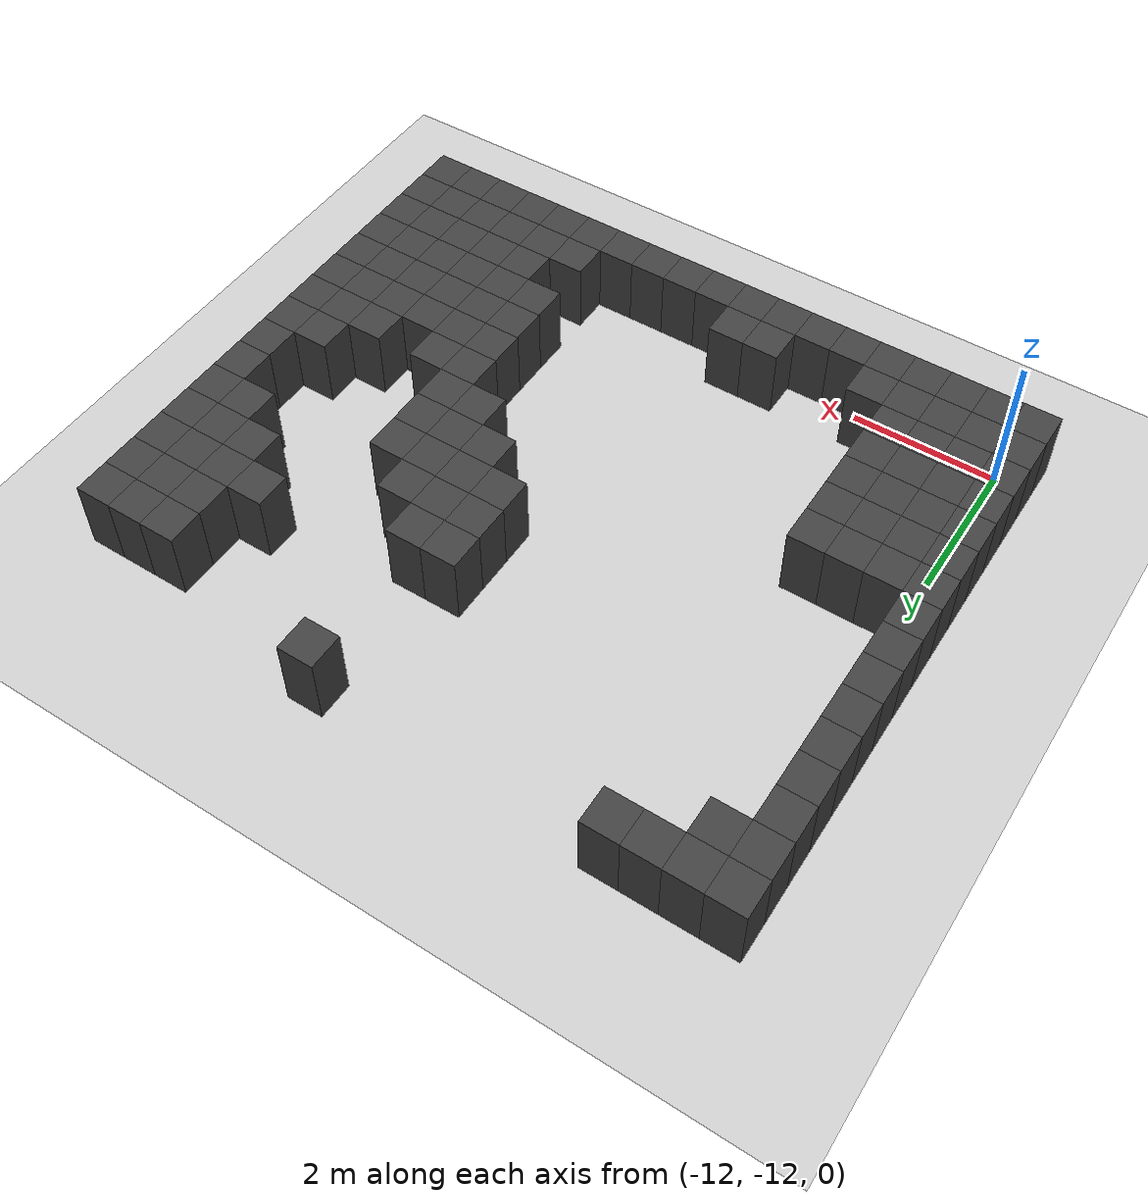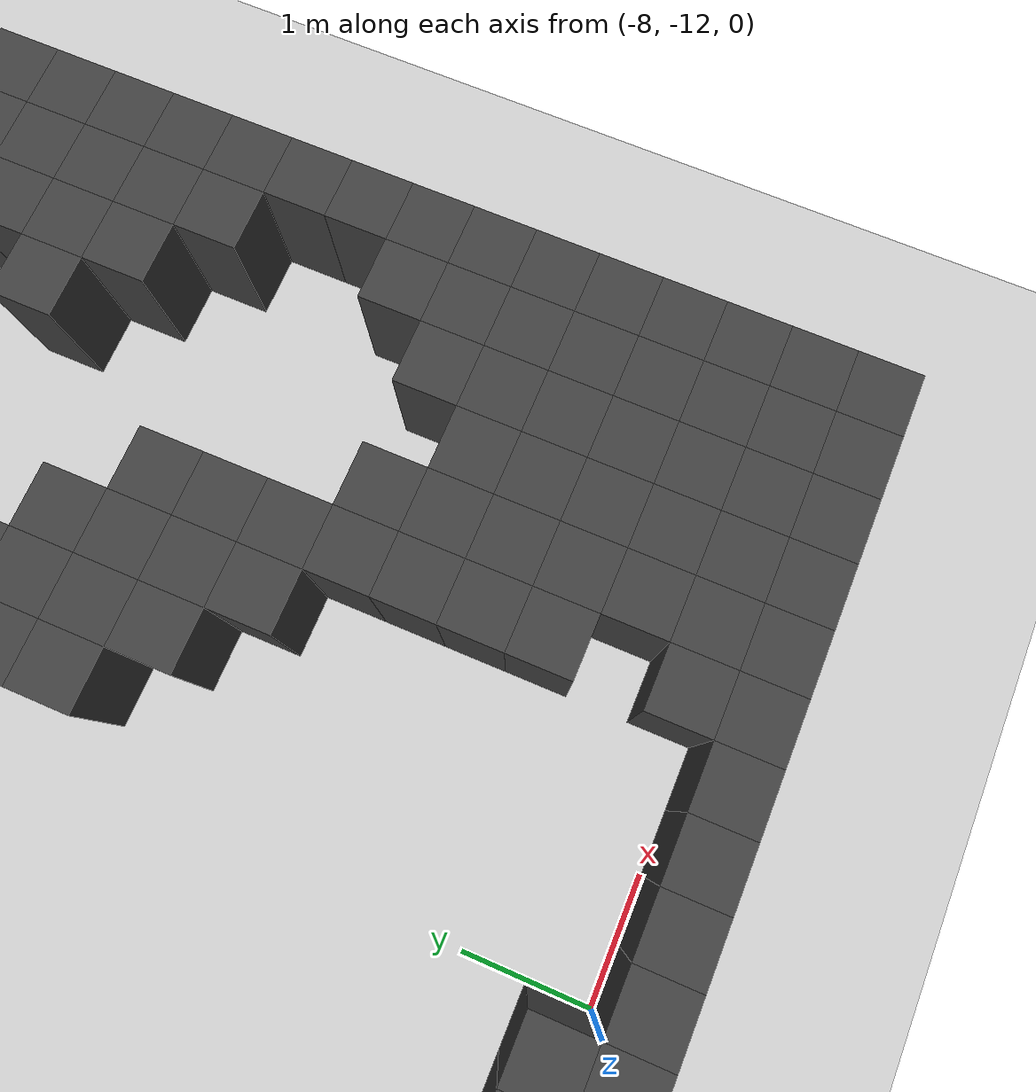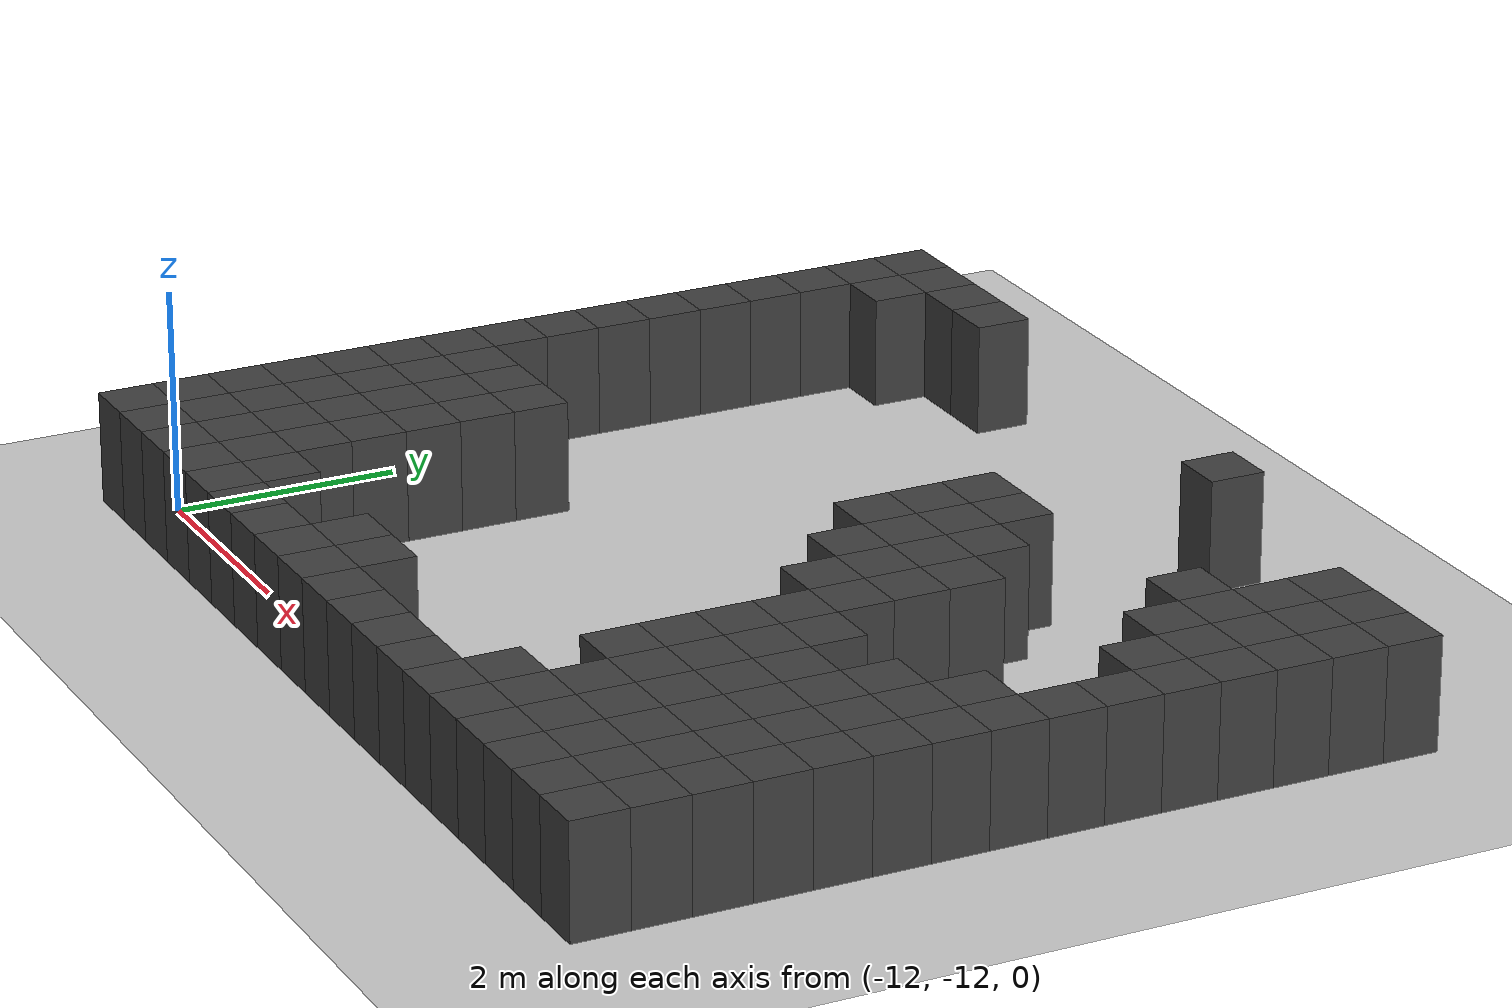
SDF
<sdf version="1.7">
 <world name="map_7981">
  <model name="ground_plane">
   <static>true</static>
   <link name="link">
    <collision name="collision">
     <geometry><plane><normal>0 0 1</normal><size>200 200</size></plane></geometry>
    </collision>
    <visual name="visual">
     <geometry><plane><normal>0 0 1</normal><size>200 200</size></plane></geometry>
     <material><ambient>0.8 0.8 0.8 1</ambient><diffuse>0.8 0.8 0.8 1</diffuse></material>
    </visual>
   </link>
  </model>
  <model name="maze_environment">
   <static>true</static>
   <link name="wall_536">
    <pose>-12.250 -4.750 0.500 0 0 0</pose>
    <collision name="col"><geometry><box><size>0.5 0.5 1.0</size></box></geometry></collision>
    <visual name="vis">
     <geometry><box><size>0.5 0.5 1.0</size></box></geometry>
     <material><ambient>0.15 0.15 0.15 1</ambient><diffuse>0.25 0.25 0.25 1</diffuse></material>
    </visual>
   </link>
   <link name="wall_537">
    <pose>-11.750 -4.750 0.500 0 0 0</pose>
    <collision name="col"><geometry><box><size>0.5 0.5 1.0</size></box></geometry></collision>
    <visual name="vis">
     <geometry><box><size>0.5 0.5 1.0</size></box></geometry>
     <material><ambient>0.15 0.15 0.15 1</ambient><diffuse>0.25 0.25 0.25 1</diffuse></material>
    </visual>
   </link>
   <link name="wall_538">
    <pose>-11.250 -4.750 0.500 0 0 0</pose>
    <collision name="col"><geometry><box><size>0.5 0.5 1.0</size></box></geometry></collision>
    <visual name="vis">
     <geometry><box><size>0.5 0.5 1.0</size></box></geometry>
     <material><ambient>0.15 0.15 0.15 1</ambient><diffuse>0.25 0.25 0.25 1</diffuse></material>
    </visual>
   </link>
   <link name="wall_539">
    <pose>-10.750 -4.750 0.500 0 0 0</pose>
    <collision name="col"><geometry><box><size>0.5 0.5 1.0</size></box></geometry></collision>
    <visual name="vis">
     <geometry><box><size>0.5 0.5 1.0</size></box></geometry>
     <material><ambient>0.15 0.15 0.15 1</ambient><diffuse>0.25 0.25 0.25 1</diffuse></material>
    </visual>
   </link>
   <link name="wall_540">
    <pose>-6.750 -4.750 0.500 0 0 0</pose>
    <collision name="col"><geometry><box><size>0.5 0.5 1.0</size></box></geometry></collision>
    <visual name="vis">
     <geometry><box><size>0.5 0.5 1.0</size></box></geometry>
     <material><ambient>0.15 0.15 0.15 1</ambient><diffuse>0.25 0.25 0.25 1</diffuse></material>
    </visual>
   </link>
   <link name="wall_549">
    <pose>-12.250 -5.250 0.500 0 0 0</pose>
    <collision name="col"><geometry><box><size>0.5 0.5 1.0</size></box></geometry></collision>
    <visual name="vis">
     <geometry><box><size>0.5 0.5 1.0</size></box></geometry>
     <material><ambient>0.15 0.15 0.15 1</ambient><diffuse>0.25 0.25 0.25 1</diffuse></material>
    </visual>
   </link>
   <link name="wall_550">
    <pose>-11.750 -5.250 0.500 0 0 0</pose>
    <collision name="col"><geometry><box><size>0.5 0.5 1.0</size></box></geometry></collision>
    <visual name="vis">
     <geometry><box><size>0.5 0.5 1.0</size></box></geometry>
     <material><ambient>0.15 0.15 0.15 1</ambient><diffuse>0.25 0.25 0.25 1</diffuse></material>
    </visual>
   </link>
   <link name="wall_551">
    <pose>-4.250 -5.250 0.500 0 0 0</pose>
    <collision name="col"><geometry><box><size>0.5 0.5 1.0</size></box></geometry></collision>
    <visual name="vis">
     <geometry><box><size>0.5 0.5 1.0</size></box></geometry>
     <material><ambient>0.15 0.15 0.15 1</ambient><diffuse>0.25 0.25 0.25 1</diffuse></material>
    </visual>
   </link>
   <link name="wall_552">
    <pose>-3.750 -5.250 0.500 0 0 0</pose>
    <collision name="col"><geometry><box><size>0.5 0.5 1.0</size></box></geometry></collision>
    <visual name="vis">
     <geometry><box><size>0.5 0.5 1.0</size></box></geometry>
     <material><ambient>0.15 0.15 0.15 1</ambient><diffuse>0.25 0.25 0.25 1</diffuse></material>
    </visual>
   </link>
   <link name="wall_553">
    <pose>-3.250 -5.250 0.500 0 0 0</pose>
    <collision name="col"><geometry><box><size>0.5 0.5 1.0</size></box></geometry></collision>
    <visual name="vis">
     <geometry><box><size>0.5 0.5 1.0</size></box></geometry>
     <material><ambient>0.15 0.15 0.15 1</ambient><diffuse>0.25 0.25 0.25 1</diffuse></material>
    </visual>
   </link>
   <link name="wall_563">
    <pose>-12.250 -5.750 0.500 0 0 0</pose>
    <collision name="col"><geometry><box><size>0.5 0.5 1.0</size></box></geometry></collision>
    <visual name="vis">
     <geometry><box><size>0.5 0.5 1.0</size></box></geometry>
     <material><ambient>0.15 0.15 0.15 1</ambient><diffuse>0.25 0.25 0.25 1</diffuse></material>
    </visual>
   </link>
   <link name="wall_564">
    <pose>-4.250 -5.750 0.500 0 0 0</pose>
    <collision name="col"><geometry><box><size>0.5 0.5 1.0</size></box></geometry></collision>
    <visual name="vis">
     <geometry><box><size>0.5 0.5 1.0</size></box></geometry>
     <material><ambient>0.15 0.15 0.15 1</ambient><diffuse>0.25 0.25 0.25 1</diffuse></material>
    </visual>
   </link>
   <link name="wall_565">
    <pose>-3.750 -5.750 0.500 0 0 0</pose>
    <collision name="col"><geometry><box><size>0.5 0.5 1.0</size></box></geometry></collision>
    <visual name="vis">
     <geometry><box><size>0.5 0.5 1.0</size></box></geometry>
     <material><ambient>0.15 0.15 0.15 1</ambient><diffuse>0.25 0.25 0.25 1</diffuse></material>
    </visual>
   </link>
   <link name="wall_566">
    <pose>-3.250 -5.750 0.500 0 0 0</pose>
    <collision name="col"><geometry><box><size>0.5 0.5 1.0</size></box></geometry></collision>
    <visual name="vis">
     <geometry><box><size>0.5 0.5 1.0</size></box></geometry>
     <material><ambient>0.15 0.15 0.15 1</ambient><diffuse>0.25 0.25 0.25 1</diffuse></material>
    </visual>
   </link>
   <link name="wall_579">
    <pose>-12.250 -6.250 0.500 0 0 0</pose>
    <collision name="col"><geometry><box><size>0.5 0.5 1.0</size></box></geometry></collision>
    <visual name="vis">
     <geometry><box><size>0.5 0.5 1.0</size></box></geometry>
     <material><ambient>0.15 0.15 0.15 1</ambient><diffuse>0.25 0.25 0.25 1</diffuse></material>
    </visual>
   </link>
   <link name="wall_580">
    <pose>-4.750 -6.250 0.500 0 0 0</pose>
    <collision name="col"><geometry><box><size>0.5 0.5 1.0</size></box></geometry></collision>
    <visual name="vis">
     <geometry><box><size>0.5 0.5 1.0</size></box></geometry>
     <material><ambient>0.15 0.15 0.15 1</ambient><diffuse>0.25 0.25 0.25 1</diffuse></material>
    </visual>
   </link>
   <link name="wall_581">
    <pose>-4.250 -6.250 0.500 0 0 0</pose>
    <collision name="col"><geometry><box><size>0.5 0.5 1.0</size></box></geometry></collision>
    <visual name="vis">
     <geometry><box><size>0.5 0.5 1.0</size></box></geometry>
     <material><ambient>0.15 0.15 0.15 1</ambient><diffuse>0.25 0.25 0.25 1</diffuse></material>
    </visual>
   </link>
   <link name="wall_582">
    <pose>-3.750 -6.250 0.500 0 0 0</pose>
    <collision name="col"><geometry><box><size>0.5 0.5 1.0</size></box></geometry></collision>
    <visual name="vis">
     <geometry><box><size>0.5 0.5 1.0</size></box></geometry>
     <material><ambient>0.15 0.15 0.15 1</ambient><diffuse>0.25 0.25 0.25 1</diffuse></material>
    </visual>
   </link>
   <link name="wall_583">
    <pose>-3.250 -6.250 0.500 0 0 0</pose>
    <collision name="col"><geometry><box><size>0.5 0.5 1.0</size></box></geometry></collision>
    <visual name="vis">
     <geometry><box><size>0.5 0.5 1.0</size></box></geometry>
     <material><ambient>0.15 0.15 0.15 1</ambient><diffuse>0.25 0.25 0.25 1</diffuse></material>
    </visual>
   </link>
   <link name="wall_600">
    <pose>-12.250 -6.750 0.500 0 0 0</pose>
    <collision name="col"><geometry><box><size>0.5 0.5 1.0</size></box></geometry></collision>
    <visual name="vis">
     <geometry><box><size>0.5 0.5 1.0</size></box></geometry>
     <material><ambient>0.15 0.15 0.15 1</ambient><diffuse>0.25 0.25 0.25 1</diffuse></material>
    </visual>
   </link>
   <link name="wall_601">
    <pose>-7.250 -6.750 0.500 0 0 0</pose>
    <collision name="col"><geometry><box><size>0.5 0.5 1.0</size></box></geometry></collision>
    <visual name="vis">
     <geometry><box><size>0.5 0.5 1.0</size></box></geometry>
     <material><ambient>0.15 0.15 0.15 1</ambient><diffuse>0.25 0.25 0.25 1</diffuse></material>
    </visual>
   </link>
   <link name="wall_602">
    <pose>-6.750 -6.750 0.500 0 0 0</pose>
    <collision name="col"><geometry><box><size>0.5 0.5 1.0</size></box></geometry></collision>
    <visual name="vis">
     <geometry><box><size>0.5 0.5 1.0</size></box></geometry>
     <material><ambient>0.15 0.15 0.15 1</ambient><diffuse>0.25 0.25 0.25 1</diffuse></material>
    </visual>
   </link>
   <link name="wall_603">
    <pose>-4.250 -6.750 0.500 0 0 0</pose>
    <collision name="col"><geometry><box><size>0.5 0.5 1.0</size></box></geometry></collision>
    <visual name="vis">
     <geometry><box><size>0.5 0.5 1.0</size></box></geometry>
     <material><ambient>0.15 0.15 0.15 1</ambient><diffuse>0.25 0.25 0.25 1</diffuse></material>
    </visual>
   </link>
   <link name="wall_604">
    <pose>-3.750 -6.750 0.500 0 0 0</pose>
    <collision name="col"><geometry><box><size>0.5 0.5 1.0</size></box></geometry></collision>
    <visual name="vis">
     <geometry><box><size>0.5 0.5 1.0</size></box></geometry>
     <material><ambient>0.15 0.15 0.15 1</ambient><diffuse>0.25 0.25 0.25 1</diffuse></material>
    </visual>
   </link>
   <link name="wall_605">
    <pose>-3.250 -6.750 0.500 0 0 0</pose>
    <collision name="col"><geometry><box><size>0.5 0.5 1.0</size></box></geometry></collision>
    <visual name="vis">
     <geometry><box><size>0.5 0.5 1.0</size></box></geometry>
     <material><ambient>0.15 0.15 0.15 1</ambient><diffuse>0.25 0.25 0.25 1</diffuse></material>
    </visual>
   </link>
   <link name="wall_629">
    <pose>-12.250 -7.250 0.500 0 0 0</pose>
    <collision name="col"><geometry><box><size>0.5 0.5 1.0</size></box></geometry></collision>
    <visual name="vis">
     <geometry><box><size>0.5 0.5 1.0</size></box></geometry>
     <material><ambient>0.15 0.15 0.15 1</ambient><diffuse>0.25 0.25 0.25 1</diffuse></material>
    </visual>
   </link>
   <link name="wall_630">
    <pose>-7.250 -7.250 0.500 0 0 0</pose>
    <collision name="col"><geometry><box><size>0.5 0.5 1.0</size></box></geometry></collision>
    <visual name="vis">
     <geometry><box><size>0.5 0.5 1.0</size></box></geometry>
     <material><ambient>0.15 0.15 0.15 1</ambient><diffuse>0.25 0.25 0.25 1</diffuse></material>
    </visual>
   </link>
   <link name="wall_631">
    <pose>-6.750 -7.250 0.500 0 0 0</pose>
    <collision name="col"><geometry><box><size>0.5 0.5 1.0</size></box></geometry></collision>
    <visual name="vis">
     <geometry><box><size>0.5 0.5 1.0</size></box></geometry>
     <material><ambient>0.15 0.15 0.15 1</ambient><diffuse>0.25 0.25 0.25 1</diffuse></material>
    </visual>
   </link>
   <link name="wall_632">
    <pose>-6.250 -7.250 0.500 0 0 0</pose>
    <collision name="col"><geometry><box><size>0.5 0.5 1.0</size></box></geometry></collision>
    <visual name="vis">
     <geometry><box><size>0.5 0.5 1.0</size></box></geometry>
     <material><ambient>0.15 0.15 0.15 1</ambient><diffuse>0.25 0.25 0.25 1</diffuse></material>
    </visual>
   </link>
   <link name="wall_633">
    <pose>-3.750 -7.250 0.500 0 0 0</pose>
    <collision name="col"><geometry><box><size>0.5 0.5 1.0</size></box></geometry></collision>
    <visual name="vis">
     <geometry><box><size>0.5 0.5 1.0</size></box></geometry>
     <material><ambient>0.15 0.15 0.15 1</ambient><diffuse>0.25 0.25 0.25 1</diffuse></material>
    </visual>
   </link>
   <link name="wall_634">
    <pose>-3.250 -7.250 0.500 0 0 0</pose>
    <collision name="col"><geometry><box><size>0.5 0.5 1.0</size></box></geometry></collision>
    <visual name="vis">
     <geometry><box><size>0.5 0.5 1.0</size></box></geometry>
     <material><ambient>0.15 0.15 0.15 1</ambient><diffuse>0.25 0.25 0.25 1</diffuse></material>
    </visual>
   </link>
   <link name="wall_660">
    <pose>-12.250 -7.750 0.500 0 0 0</pose>
    <collision name="col"><geometry><box><size>0.5 0.5 1.0</size></box></geometry></collision>
    <visual name="vis">
     <geometry><box><size>0.5 0.5 1.0</size></box></geometry>
     <material><ambient>0.15 0.15 0.15 1</ambient><diffuse>0.25 0.25 0.25 1</diffuse></material>
    </visual>
   </link>
   <link name="wall_661">
    <pose>-7.250 -7.750 0.500 0 0 0</pose>
    <collision name="col"><geometry><box><size>0.5 0.5 1.0</size></box></geometry></collision>
    <visual name="vis">
     <geometry><box><size>0.5 0.5 1.0</size></box></geometry>
     <material><ambient>0.15 0.15 0.15 1</ambient><diffuse>0.25 0.25 0.25 1</diffuse></material>
    </visual>
   </link>
   <link name="wall_662">
    <pose>-6.750 -7.750 0.500 0 0 0</pose>
    <collision name="col"><geometry><box><size>0.5 0.5 1.0</size></box></geometry></collision>
    <visual name="vis">
     <geometry><box><size>0.5 0.5 1.0</size></box></geometry>
     <material><ambient>0.15 0.15 0.15 1</ambient><diffuse>0.25 0.25 0.25 1</diffuse></material>
    </visual>
   </link>
   <link name="wall_663">
    <pose>-6.250 -7.750 0.500 0 0 0</pose>
    <collision name="col"><geometry><box><size>0.5 0.5 1.0</size></box></geometry></collision>
    <visual name="vis">
     <geometry><box><size>0.5 0.5 1.0</size></box></geometry>
     <material><ambient>0.15 0.15 0.15 1</ambient><diffuse>0.25 0.25 0.25 1</diffuse></material>
    </visual>
   </link>
   <link name="wall_664">
    <pose>-5.750 -7.750 0.500 0 0 0</pose>
    <collision name="col"><geometry><box><size>0.5 0.5 1.0</size></box></geometry></collision>
    <visual name="vis">
     <geometry><box><size>0.5 0.5 1.0</size></box></geometry>
     <material><ambient>0.15 0.15 0.15 1</ambient><diffuse>0.25 0.25 0.25 1</diffuse></material>
    </visual>
   </link>
   <link name="wall_665">
    <pose>-3.250 -7.750 0.500 0 0 0</pose>
    <collision name="col"><geometry><box><size>0.5 0.5 1.0</size></box></geometry></collision>
    <visual name="vis">
     <geometry><box><size>0.5 0.5 1.0</size></box></geometry>
     <material><ambient>0.15 0.15 0.15 1</ambient><diffuse>0.25 0.25 0.25 1</diffuse></material>
    </visual>
   </link>
   <link name="wall_691">
    <pose>-12.250 -8.250 0.500 0 0 0</pose>
    <collision name="col"><geometry><box><size>0.5 0.5 1.0</size></box></geometry></collision>
    <visual name="vis">
     <geometry><box><size>0.5 0.5 1.0</size></box></geometry>
     <material><ambient>0.15 0.15 0.15 1</ambient><diffuse>0.25 0.25 0.25 1</diffuse></material>
    </visual>
   </link>
   <link name="wall_692">
    <pose>-6.750 -8.250 0.500 0 0 0</pose>
    <collision name="col"><geometry><box><size>0.5 0.5 1.0</size></box></geometry></collision>
    <visual name="vis">
     <geometry><box><size>0.5 0.5 1.0</size></box></geometry>
     <material><ambient>0.15 0.15 0.15 1</ambient><diffuse>0.25 0.25 0.25 1</diffuse></material>
    </visual>
   </link>
   <link name="wall_693">
    <pose>-6.250 -8.250 0.500 0 0 0</pose>
    <collision name="col"><geometry><box><size>0.5 0.5 1.0</size></box></geometry></collision>
    <visual name="vis">
     <geometry><box><size>0.5 0.5 1.0</size></box></geometry>
     <material><ambient>0.15 0.15 0.15 1</ambient><diffuse>0.25 0.25 0.25 1</diffuse></material>
    </visual>
   </link>
   <link name="wall_694">
    <pose>-5.750 -8.250 0.500 0 0 0</pose>
    <collision name="col"><geometry><box><size>0.5 0.5 1.0</size></box></geometry></collision>
    <visual name="vis">
     <geometry><box><size>0.5 0.5 1.0</size></box></geometry>
     <material><ambient>0.15 0.15 0.15 1</ambient><diffuse>0.25 0.25 0.25 1</diffuse></material>
    </visual>
   </link>
   <link name="wall_695">
    <pose>-3.250 -8.250 0.500 0 0 0</pose>
    <collision name="col"><geometry><box><size>0.5 0.5 1.0</size></box></geometry></collision>
    <visual name="vis">
     <geometry><box><size>0.5 0.5 1.0</size></box></geometry>
     <material><ambient>0.15 0.15 0.15 1</ambient><diffuse>0.25 0.25 0.25 1</diffuse></material>
    </visual>
   </link>
   <link name="wall_718">
    <pose>-12.250 -8.750 0.500 0 0 0</pose>
    <collision name="col"><geometry><box><size>0.5 0.5 1.0</size></box></geometry></collision>
    <visual name="vis">
     <geometry><box><size>0.5 0.5 1.0</size></box></geometry>
     <material><ambient>0.15 0.15 0.15 1</ambient><diffuse>0.25 0.25 0.25 1</diffuse></material>
    </visual>
   </link>
   <link name="wall_719">
    <pose>-6.250 -8.750 0.500 0 0 0</pose>
    <collision name="col"><geometry><box><size>0.5 0.5 1.0</size></box></geometry></collision>
    <visual name="vis">
     <geometry><box><size>0.5 0.5 1.0</size></box></geometry>
     <material><ambient>0.15 0.15 0.15 1</ambient><diffuse>0.25 0.25 0.25 1</diffuse></material>
    </visual>
   </link>
   <link name="wall_720">
    <pose>-5.750 -8.750 0.500 0 0 0</pose>
    <collision name="col"><geometry><box><size>0.5 0.5 1.0</size></box></geometry></collision>
    <visual name="vis">
     <geometry><box><size>0.5 0.5 1.0</size></box></geometry>
     <material><ambient>0.15 0.15 0.15 1</ambient><diffuse>0.25 0.25 0.25 1</diffuse></material>
    </visual>
   </link>
   <link name="wall_721">
    <pose>-3.750 -8.750 0.500 0 0 0</pose>
    <collision name="col"><geometry><box><size>0.5 0.5 1.0</size></box></geometry></collision>
    <visual name="vis">
     <geometry><box><size>0.5 0.5 1.0</size></box></geometry>
     <material><ambient>0.15 0.15 0.15 1</ambient><diffuse>0.25 0.25 0.25 1</diffuse></material>
    </visual>
   </link>
   <link name="wall_722">
    <pose>-3.250 -8.750 0.500 0 0 0</pose>
    <collision name="col"><geometry><box><size>0.5 0.5 1.0</size></box></geometry></collision>
    <visual name="vis">
     <geometry><box><size>0.5 0.5 1.0</size></box></geometry>
     <material><ambient>0.15 0.15 0.15 1</ambient><diffuse>0.25 0.25 0.25 1</diffuse></material>
    </visual>
   </link>
   <link name="wall_738">
    <pose>-12.250 -9.250 0.500 0 0 0</pose>
    <collision name="col"><geometry><box><size>0.5 0.5 1.0</size></box></geometry></collision>
    <visual name="vis">
     <geometry><box><size>0.5 0.5 1.0</size></box></geometry>
     <material><ambient>0.15 0.15 0.15 1</ambient><diffuse>0.25 0.25 0.25 1</diffuse></material>
    </visual>
   </link>
   <link name="wall_739">
    <pose>-11.750 -9.250 0.500 0 0 0</pose>
    <collision name="col"><geometry><box><size>0.5 0.5 1.0</size></box></geometry></collision>
    <visual name="vis">
     <geometry><box><size>0.5 0.5 1.0</size></box></geometry>
     <material><ambient>0.15 0.15 0.15 1</ambient><diffuse>0.25 0.25 0.25 1</diffuse></material>
    </visual>
   </link>
   <link name="wall_740">
    <pose>-11.250 -9.250 0.500 0 0 0</pose>
    <collision name="col"><geometry><box><size>0.5 0.5 1.0</size></box></geometry></collision>
    <visual name="vis">
     <geometry><box><size>0.5 0.5 1.0</size></box></geometry>
     <material><ambient>0.15 0.15 0.15 1</ambient><diffuse>0.25 0.25 0.25 1</diffuse></material>
    </visual>
   </link>
   <link name="wall_741">
    <pose>-10.750 -9.250 0.500 0 0 0</pose>
    <collision name="col"><geometry><box><size>0.5 0.5 1.0</size></box></geometry></collision>
    <visual name="vis">
     <geometry><box><size>0.5 0.5 1.0</size></box></geometry>
     <material><ambient>0.15 0.15 0.15 1</ambient><diffuse>0.25 0.25 0.25 1</diffuse></material>
    </visual>
   </link>
   <link name="wall_742">
    <pose>-5.750 -9.250 0.500 0 0 0</pose>
    <collision name="col"><geometry><box><size>0.5 0.5 1.0</size></box></geometry></collision>
    <visual name="vis">
     <geometry><box><size>0.5 0.5 1.0</size></box></geometry>
     <material><ambient>0.15 0.15 0.15 1</ambient><diffuse>0.25 0.25 0.25 1</diffuse></material>
    </visual>
   </link>
   <link name="wall_743">
    <pose>-5.250 -9.250 0.500 0 0 0</pose>
    <collision name="col"><geometry><box><size>0.5 0.5 1.0</size></box></geometry></collision>
    <visual name="vis">
     <geometry><box><size>0.5 0.5 1.0</size></box></geometry>
     <material><ambient>0.15 0.15 0.15 1</ambient><diffuse>0.25 0.25 0.25 1</diffuse></material>
    </visual>
   </link>
   <link name="wall_744">
    <pose>-4.250 -9.250 0.500 0 0 0</pose>
    <collision name="col"><geometry><box><size>0.5 0.5 1.0</size></box></geometry></collision>
    <visual name="vis">
     <geometry><box><size>0.5 0.5 1.0</size></box></geometry>
     <material><ambient>0.15 0.15 0.15 1</ambient><diffuse>0.25 0.25 0.25 1</diffuse></material>
    </visual>
   </link>
   <link name="wall_745">
    <pose>-3.750 -9.250 0.500 0 0 0</pose>
    <collision name="col"><geometry><box><size>0.5 0.5 1.0</size></box></geometry></collision>
    <visual name="vis">
     <geometry><box><size>0.5 0.5 1.0</size></box></geometry>
     <material><ambient>0.15 0.15 0.15 1</ambient><diffuse>0.25 0.25 0.25 1</diffuse></material>
    </visual>
   </link>
   <link name="wall_746">
    <pose>-3.250 -9.250 0.500 0 0 0</pose>
    <collision name="col"><geometry><box><size>0.5 0.5 1.0</size></box></geometry></collision>
    <visual name="vis">
     <geometry><box><size>0.5 0.5 1.0</size></box></geometry>
     <material><ambient>0.15 0.15 0.15 1</ambient><diffuse>0.25 0.25 0.25 1</diffuse></material>
    </visual>
   </link>
   <link name="wall_758">
    <pose>-12.250 -9.750 0.500 0 0 0</pose>
    <collision name="col"><geometry><box><size>0.5 0.5 1.0</size></box></geometry></collision>
    <visual name="vis">
     <geometry><box><size>0.5 0.5 1.0</size></box></geometry>
     <material><ambient>0.15 0.15 0.15 1</ambient><diffuse>0.25 0.25 0.25 1</diffuse></material>
    </visual>
   </link>
   <link name="wall_759">
    <pose>-11.750 -9.750 0.500 0 0 0</pose>
    <collision name="col"><geometry><box><size>0.5 0.5 1.0</size></box></geometry></collision>
    <visual name="vis">
     <geometry><box><size>0.5 0.5 1.0</size></box></geometry>
     <material><ambient>0.15 0.15 0.15 1</ambient><diffuse>0.25 0.25 0.25 1</diffuse></material>
    </visual>
   </link>
   <link name="wall_760">
    <pose>-11.250 -9.750 0.500 0 0 0</pose>
    <collision name="col"><geometry><box><size>0.5 0.5 1.0</size></box></geometry></collision>
    <visual name="vis">
     <geometry><box><size>0.5 0.5 1.0</size></box></geometry>
     <material><ambient>0.15 0.15 0.15 1</ambient><diffuse>0.25 0.25 0.25 1</diffuse></material>
    </visual>
   </link>
   <link name="wall_761">
    <pose>-10.750 -9.750 0.500 0 0 0</pose>
    <collision name="col"><geometry><box><size>0.5 0.5 1.0</size></box></geometry></collision>
    <visual name="vis">
     <geometry><box><size>0.5 0.5 1.0</size></box></geometry>
     <material><ambient>0.15 0.15 0.15 1</ambient><diffuse>0.25 0.25 0.25 1</diffuse></material>
    </visual>
   </link>
   <link name="wall_762">
    <pose>-5.750 -9.750 0.500 0 0 0</pose>
    <collision name="col"><geometry><box><size>0.5 0.5 1.0</size></box></geometry></collision>
    <visual name="vis">
     <geometry><box><size>0.5 0.5 1.0</size></box></geometry>
     <material><ambient>0.15 0.15 0.15 1</ambient><diffuse>0.25 0.25 0.25 1</diffuse></material>
    </visual>
   </link>
   <link name="wall_763">
    <pose>-5.250 -9.750 0.500 0 0 0</pose>
    <collision name="col"><geometry><box><size>0.5 0.5 1.0</size></box></geometry></collision>
    <visual name="vis">
     <geometry><box><size>0.5 0.5 1.0</size></box></geometry>
     <material><ambient>0.15 0.15 0.15 1</ambient><diffuse>0.25 0.25 0.25 1</diffuse></material>
    </visual>
   </link>
   <link name="wall_764">
    <pose>-4.750 -9.750 0.500 0 0 0</pose>
    <collision name="col"><geometry><box><size>0.5 0.5 1.0</size></box></geometry></collision>
    <visual name="vis">
     <geometry><box><size>0.5 0.5 1.0</size></box></geometry>
     <material><ambient>0.15 0.15 0.15 1</ambient><diffuse>0.25 0.25 0.25 1</diffuse></material>
    </visual>
   </link>
   <link name="wall_765">
    <pose>-4.250 -9.750 0.500 0 0 0</pose>
    <collision name="col"><geometry><box><size>0.5 0.5 1.0</size></box></geometry></collision>
    <visual name="vis">
     <geometry><box><size>0.5 0.5 1.0</size></box></geometry>
     <material><ambient>0.15 0.15 0.15 1</ambient><diffuse>0.25 0.25 0.25 1</diffuse></material>
    </visual>
   </link>
   <link name="wall_766">
    <pose>-3.750 -9.750 0.500 0 0 0</pose>
    <collision name="col"><geometry><box><size>0.5 0.5 1.0</size></box></geometry></collision>
    <visual name="vis">
     <geometry><box><size>0.5 0.5 1.0</size></box></geometry>
     <material><ambient>0.15 0.15 0.15 1</ambient><diffuse>0.25 0.25 0.25 1</diffuse></material>
    </visual>
   </link>
   <link name="wall_767">
    <pose>-3.250 -9.750 0.500 0 0 0</pose>
    <collision name="col"><geometry><box><size>0.5 0.5 1.0</size></box></geometry></collision>
    <visual name="vis">
     <geometry><box><size>0.5 0.5 1.0</size></box></geometry>
     <material><ambient>0.15 0.15 0.15 1</ambient><diffuse>0.25 0.25 0.25 1</diffuse></material>
    </visual>
   </link>
   <link name="wall_777">
    <pose>-12.250 -10.250 0.500 0 0 0</pose>
    <collision name="col"><geometry><box><size>0.5 0.5 1.0</size></box></geometry></collision>
    <visual name="vis">
     <geometry><box><size>0.5 0.5 1.0</size></box></geometry>
     <material><ambient>0.15 0.15 0.15 1</ambient><diffuse>0.25 0.25 0.25 1</diffuse></material>
    </visual>
   </link>
   <link name="wall_778">
    <pose>-11.750 -10.250 0.500 0 0 0</pose>
    <collision name="col"><geometry><box><size>0.5 0.5 1.0</size></box></geometry></collision>
    <visual name="vis">
     <geometry><box><size>0.5 0.5 1.0</size></box></geometry>
     <material><ambient>0.15 0.15 0.15 1</ambient><diffuse>0.25 0.25 0.25 1</diffuse></material>
    </visual>
   </link>
   <link name="wall_779">
    <pose>-11.250 -10.250 0.500 0 0 0</pose>
    <collision name="col"><geometry><box><size>0.5 0.5 1.0</size></box></geometry></collision>
    <visual name="vis">
     <geometry><box><size>0.5 0.5 1.0</size></box></geometry>
     <material><ambient>0.15 0.15 0.15 1</ambient><diffuse>0.25 0.25 0.25 1</diffuse></material>
    </visual>
   </link>
   <link name="wall_780">
    <pose>-10.750 -10.250 0.500 0 0 0</pose>
    <collision name="col"><geometry><box><size>0.5 0.5 1.0</size></box></geometry></collision>
    <visual name="vis">
     <geometry><box><size>0.5 0.5 1.0</size></box></geometry>
     <material><ambient>0.15 0.15 0.15 1</ambient><diffuse>0.25 0.25 0.25 1</diffuse></material>
    </visual>
   </link>
   <link name="wall_781">
    <pose>-5.750 -10.250 0.500 0 0 0</pose>
    <collision name="col"><geometry><box><size>0.5 0.5 1.0</size></box></geometry></collision>
    <visual name="vis">
     <geometry><box><size>0.5 0.5 1.0</size></box></geometry>
     <material><ambient>0.15 0.15 0.15 1</ambient><diffuse>0.25 0.25 0.25 1</diffuse></material>
    </visual>
   </link>
   <link name="wall_782">
    <pose>-5.250 -10.250 0.500 0 0 0</pose>
    <collision name="col"><geometry><box><size>0.5 0.5 1.0</size></box></geometry></collision>
    <visual name="vis">
     <geometry><box><size>0.5 0.5 1.0</size></box></geometry>
     <material><ambient>0.15 0.15 0.15 1</ambient><diffuse>0.25 0.25 0.25 1</diffuse></material>
    </visual>
   </link>
   <link name="wall_783">
    <pose>-4.750 -10.250 0.500 0 0 0</pose>
    <collision name="col"><geometry><box><size>0.5 0.5 1.0</size></box></geometry></collision>
    <visual name="vis">
     <geometry><box><size>0.5 0.5 1.0</size></box></geometry>
     <material><ambient>0.15 0.15 0.15 1</ambient><diffuse>0.25 0.25 0.25 1</diffuse></material>
    </visual>
   </link>
   <link name="wall_784">
    <pose>-4.250 -10.250 0.500 0 0 0</pose>
    <collision name="col"><geometry><box><size>0.5 0.5 1.0</size></box></geometry></collision>
    <visual name="vis">
     <geometry><box><size>0.5 0.5 1.0</size></box></geometry>
     <material><ambient>0.15 0.15 0.15 1</ambient><diffuse>0.25 0.25 0.25 1</diffuse></material>
    </visual>
   </link>
   <link name="wall_785">
    <pose>-3.750 -10.250 0.500 0 0 0</pose>
    <collision name="col"><geometry><box><size>0.5 0.5 1.0</size></box></geometry></collision>
    <visual name="vis">
     <geometry><box><size>0.5 0.5 1.0</size></box></geometry>
     <material><ambient>0.15 0.15 0.15 1</ambient><diffuse>0.25 0.25 0.25 1</diffuse></material>
    </visual>
   </link>
   <link name="wall_786">
    <pose>-3.250 -10.250 0.500 0 0 0</pose>
    <collision name="col"><geometry><box><size>0.5 0.5 1.0</size></box></geometry></collision>
    <visual name="vis">
     <geometry><box><size>0.5 0.5 1.0</size></box></geometry>
     <material><ambient>0.15 0.15 0.15 1</ambient><diffuse>0.25 0.25 0.25 1</diffuse></material>
    </visual>
   </link>
   <link name="wall_792">
    <pose>-12.250 -10.750 0.500 0 0 0</pose>
    <collision name="col"><geometry><box><size>0.5 0.5 1.0</size></box></geometry></collision>
    <visual name="vis">
     <geometry><box><size>0.5 0.5 1.0</size></box></geometry>
     <material><ambient>0.15 0.15 0.15 1</ambient><diffuse>0.25 0.25 0.25 1</diffuse></material>
    </visual>
   </link>
   <link name="wall_793">
    <pose>-11.750 -10.750 0.500 0 0 0</pose>
    <collision name="col"><geometry><box><size>0.5 0.5 1.0</size></box></geometry></collision>
    <visual name="vis">
     <geometry><box><size>0.5 0.5 1.0</size></box></geometry>
     <material><ambient>0.15 0.15 0.15 1</ambient><diffuse>0.25 0.25 0.25 1</diffuse></material>
    </visual>
   </link>
   <link name="wall_794">
    <pose>-11.250 -10.750 0.500 0 0 0</pose>
    <collision name="col"><geometry><box><size>0.5 0.5 1.0</size></box></geometry></collision>
    <visual name="vis">
     <geometry><box><size>0.5 0.5 1.0</size></box></geometry>
     <material><ambient>0.15 0.15 0.15 1</ambient><diffuse>0.25 0.25 0.25 1</diffuse></material>
    </visual>
   </link>
   <link name="wall_795">
    <pose>-10.750 -10.750 0.500 0 0 0</pose>
    <collision name="col"><geometry><box><size>0.5 0.5 1.0</size></box></geometry></collision>
    <visual name="vis">
     <geometry><box><size>0.5 0.5 1.0</size></box></geometry>
     <material><ambient>0.15 0.15 0.15 1</ambient><diffuse>0.25 0.25 0.25 1</diffuse></material>
    </visual>
   </link>
   <link name="wall_796">
    <pose>-5.750 -10.750 0.500 0 0 0</pose>
    <collision name="col"><geometry><box><size>0.5 0.5 1.0</size></box></geometry></collision>
    <visual name="vis">
     <geometry><box><size>0.5 0.5 1.0</size></box></geometry>
     <material><ambient>0.15 0.15 0.15 1</ambient><diffuse>0.25 0.25 0.25 1</diffuse></material>
    </visual>
   </link>
   <link name="wall_797">
    <pose>-5.250 -10.750 0.500 0 0 0</pose>
    <collision name="col"><geometry><box><size>0.5 0.5 1.0</size></box></geometry></collision>
    <visual name="vis">
     <geometry><box><size>0.5 0.5 1.0</size></box></geometry>
     <material><ambient>0.15 0.15 0.15 1</ambient><diffuse>0.25 0.25 0.25 1</diffuse></material>
    </visual>
   </link>
   <link name="wall_798">
    <pose>-4.750 -10.750 0.500 0 0 0</pose>
    <collision name="col"><geometry><box><size>0.5 0.5 1.0</size></box></geometry></collision>
    <visual name="vis">
     <geometry><box><size>0.5 0.5 1.0</size></box></geometry>
     <material><ambient>0.15 0.15 0.15 1</ambient><diffuse>0.25 0.25 0.25 1</diffuse></material>
    </visual>
   </link>
   <link name="wall_799">
    <pose>-4.250 -10.750 0.500 0 0 0</pose>
    <collision name="col"><geometry><box><size>0.5 0.5 1.0</size></box></geometry></collision>
    <visual name="vis">
     <geometry><box><size>0.5 0.5 1.0</size></box></geometry>
     <material><ambient>0.15 0.15 0.15 1</ambient><diffuse>0.25 0.25 0.25 1</diffuse></material>
    </visual>
   </link>
   <link name="wall_800">
    <pose>-3.750 -10.750 0.500 0 0 0</pose>
    <collision name="col"><geometry><box><size>0.5 0.5 1.0</size></box></geometry></collision>
    <visual name="vis">
     <geometry><box><size>0.5 0.5 1.0</size></box></geometry>
     <material><ambient>0.15 0.15 0.15 1</ambient><diffuse>0.25 0.25 0.25 1</diffuse></material>
    </visual>
   </link>
   <link name="wall_801">
    <pose>-3.250 -10.750 0.500 0 0 0</pose>
    <collision name="col"><geometry><box><size>0.5 0.5 1.0</size></box></geometry></collision>
    <visual name="vis">
     <geometry><box><size>0.5 0.5 1.0</size></box></geometry>
     <material><ambient>0.15 0.15 0.15 1</ambient><diffuse>0.25 0.25 0.25 1</diffuse></material>
    </visual>
   </link>
   <link name="wall_803">
    <pose>-12.250 -11.250 0.500 0 0 0</pose>
    <collision name="col"><geometry><box><size>0.5 0.5 1.0</size></box></geometry></collision>
    <visual name="vis">
     <geometry><box><size>0.5 0.5 1.0</size></box></geometry>
     <material><ambient>0.15 0.15 0.15 1</ambient><diffuse>0.25 0.25 0.25 1</diffuse></material>
    </visual>
   </link>
   <link name="wall_804">
    <pose>-11.750 -11.250 0.500 0 0 0</pose>
    <collision name="col"><geometry><box><size>0.5 0.5 1.0</size></box></geometry></collision>
    <visual name="vis">
     <geometry><box><size>0.5 0.5 1.0</size></box></geometry>
     <material><ambient>0.15 0.15 0.15 1</ambient><diffuse>0.25 0.25 0.25 1</diffuse></material>
    </visual>
   </link>
   <link name="wall_805">
    <pose>-11.250 -11.250 0.500 0 0 0</pose>
    <collision name="col"><geometry><box><size>0.5 0.5 1.0</size></box></geometry></collision>
    <visual name="vis">
     <geometry><box><size>0.5 0.5 1.0</size></box></geometry>
     <material><ambient>0.15 0.15 0.15 1</ambient><diffuse>0.25 0.25 0.25 1</diffuse></material>
    </visual>
   </link>
   <link name="wall_806">
    <pose>-10.750 -11.250 0.500 0 0 0</pose>
    <collision name="col"><geometry><box><size>0.5 0.5 1.0</size></box></geometry></collision>
    <visual name="vis">
     <geometry><box><size>0.5 0.5 1.0</size></box></geometry>
     <material><ambient>0.15 0.15 0.15 1</ambient><diffuse>0.25 0.25 0.25 1</diffuse></material>
    </visual>
   </link>
   <link name="wall_807">
    <pose>-5.250 -11.250 0.500 0 0 0</pose>
    <collision name="col"><geometry><box><size>0.5 0.5 1.0</size></box></geometry></collision>
    <visual name="vis">
     <geometry><box><size>0.5 0.5 1.0</size></box></geometry>
     <material><ambient>0.15 0.15 0.15 1</ambient><diffuse>0.25 0.25 0.25 1</diffuse></material>
    </visual>
   </link>
   <link name="wall_808">
    <pose>-4.750 -11.250 0.500 0 0 0</pose>
    <collision name="col"><geometry><box><size>0.5 0.5 1.0</size></box></geometry></collision>
    <visual name="vis">
     <geometry><box><size>0.5 0.5 1.0</size></box></geometry>
     <material><ambient>0.15 0.15 0.15 1</ambient><diffuse>0.25 0.25 0.25 1</diffuse></material>
    </visual>
   </link>
   <link name="wall_809">
    <pose>-4.250 -11.250 0.500 0 0 0</pose>
    <collision name="col"><geometry><box><size>0.5 0.5 1.0</size></box></geometry></collision>
    <visual name="vis">
     <geometry><box><size>0.5 0.5 1.0</size></box></geometry>
     <material><ambient>0.15 0.15 0.15 1</ambient><diffuse>0.25 0.25 0.25 1</diffuse></material>
    </visual>
   </link>
   <link name="wall_810">
    <pose>-3.750 -11.250 0.500 0 0 0</pose>
    <collision name="col"><geometry><box><size>0.5 0.5 1.0</size></box></geometry></collision>
    <visual name="vis">
     <geometry><box><size>0.5 0.5 1.0</size></box></geometry>
     <material><ambient>0.15 0.15 0.15 1</ambient><diffuse>0.25 0.25 0.25 1</diffuse></material>
    </visual>
   </link>
   <link name="wall_811">
    <pose>-3.250 -11.250 0.500 0 0 0</pose>
    <collision name="col"><geometry><box><size>0.5 0.5 1.0</size></box></geometry></collision>
    <visual name="vis">
     <geometry><box><size>0.5 0.5 1.0</size></box></geometry>
     <material><ambient>0.15 0.15 0.15 1</ambient><diffuse>0.25 0.25 0.25 1</diffuse></material>
    </visual>
   </link>
   <link name="wall_817">
    <pose>-12.250 -11.750 0.500 0 0 0</pose>
    <collision name="col"><geometry><box><size>0.5 0.5 1.0</size></box></geometry></collision>
    <visual name="vis">
     <geometry><box><size>0.5 0.5 1.0</size></box></geometry>
     <material><ambient>0.15 0.15 0.15 1</ambient><diffuse>0.25 0.25 0.25 1</diffuse></material>
    </visual>
   </link>
   <link name="wall_818">
    <pose>-11.750 -11.750 0.500 0 0 0</pose>
    <collision name="col"><geometry><box><size>0.5 0.5 1.0</size></box></geometry></collision>
    <visual name="vis">
     <geometry><box><size>0.5 0.5 1.0</size></box></geometry>
     <material><ambient>0.15 0.15 0.15 1</ambient><diffuse>0.25 0.25 0.25 1</diffuse></material>
    </visual>
   </link>
   <link name="wall_819">
    <pose>-11.250 -11.750 0.500 0 0 0</pose>
    <collision name="col"><geometry><box><size>0.5 0.5 1.0</size></box></geometry></collision>
    <visual name="vis">
     <geometry><box><size>0.5 0.5 1.0</size></box></geometry>
     <material><ambient>0.15 0.15 0.15 1</ambient><diffuse>0.25 0.25 0.25 1</diffuse></material>
    </visual>
   </link>
   <link name="wall_820">
    <pose>-10.750 -11.750 0.500 0 0 0</pose>
    <collision name="col"><geometry><box><size>0.5 0.5 1.0</size></box></geometry></collision>
    <visual name="vis">
     <geometry><box><size>0.5 0.5 1.0</size></box></geometry>
     <material><ambient>0.15 0.15 0.15 1</ambient><diffuse>0.25 0.25 0.25 1</diffuse></material>
    </visual>
   </link>
   <link name="wall_821">
    <pose>-10.250 -11.750 0.500 0 0 0</pose>
    <collision name="col"><geometry><box><size>0.5 0.5 1.0</size></box></geometry></collision>
    <visual name="vis">
     <geometry><box><size>0.5 0.5 1.0</size></box></geometry>
     <material><ambient>0.15 0.15 0.15 1</ambient><diffuse>0.25 0.25 0.25 1</diffuse></material>
    </visual>
   </link>
   <link name="wall_822">
    <pose>-8.750 -11.750 0.500 0 0 0</pose>
    <collision name="col"><geometry><box><size>0.5 0.5 1.0</size></box></geometry></collision>
    <visual name="vis">
     <geometry><box><size>0.5 0.5 1.0</size></box></geometry>
     <material><ambient>0.15 0.15 0.15 1</ambient><diffuse>0.25 0.25 0.25 1</diffuse></material>
    </visual>
   </link>
   <link name="wall_823">
    <pose>-8.250 -11.750 0.500 0 0 0</pose>
    <collision name="col"><geometry><box><size>0.5 0.5 1.0</size></box></geometry></collision>
    <visual name="vis">
     <geometry><box><size>0.5 0.5 1.0</size></box></geometry>
     <material><ambient>0.15 0.15 0.15 1</ambient><diffuse>0.25 0.25 0.25 1</diffuse></material>
    </visual>
   </link>
   <link name="wall_824">
    <pose>-5.750 -11.750 0.500 0 0 0</pose>
    <collision name="col"><geometry><box><size>0.5 0.5 1.0</size></box></geometry></collision>
    <visual name="vis">
     <geometry><box><size>0.5 0.5 1.0</size></box></geometry>
     <material><ambient>0.15 0.15 0.15 1</ambient><diffuse>0.25 0.25 0.25 1</diffuse></material>
    </visual>
   </link>
   <link name="wall_825">
    <pose>-5.250 -11.750 0.500 0 0 0</pose>
    <collision name="col"><geometry><box><size>0.5 0.5 1.0</size></box></geometry></collision>
    <visual name="vis">
     <geometry><box><size>0.5 0.5 1.0</size></box></geometry>
     <material><ambient>0.15 0.15 0.15 1</ambient><diffuse>0.25 0.25 0.25 1</diffuse></material>
    </visual>
   </link>
   <link name="wall_826">
    <pose>-4.750 -11.750 0.500 0 0 0</pose>
    <collision name="col"><geometry><box><size>0.5 0.5 1.0</size></box></geometry></collision>
    <visual name="vis">
     <geometry><box><size>0.5 0.5 1.0</size></box></geometry>
     <material><ambient>0.15 0.15 0.15 1</ambient><diffuse>0.25 0.25 0.25 1</diffuse></material>
    </visual>
   </link>
   <link name="wall_827">
    <pose>-4.250 -11.750 0.500 0 0 0</pose>
    <collision name="col"><geometry><box><size>0.5 0.5 1.0</size></box></geometry></collision>
    <visual name="vis">
     <geometry><box><size>0.5 0.5 1.0</size></box></geometry>
     <material><ambient>0.15 0.15 0.15 1</ambient><diffuse>0.25 0.25 0.25 1</diffuse></material>
    </visual>
   </link>
   <link name="wall_828">
    <pose>-3.750 -11.750 0.500 0 0 0</pose>
    <collision name="col"><geometry><box><size>0.5 0.5 1.0</size></box></geometry></collision>
    <visual name="vis">
     <geometry><box><size>0.5 0.5 1.0</size></box></geometry>
     <material><ambient>0.15 0.15 0.15 1</ambient><diffuse>0.25 0.25 0.25 1</diffuse></material>
    </visual>
   </link>
   <link name="wall_829">
    <pose>-3.250 -11.750 0.500 0 0 0</pose>
    <collision name="col"><geometry><box><size>0.5 0.5 1.0</size></box></geometry></collision>
    <visual name="vis">
     <geometry><box><size>0.5 0.5 1.0</size></box></geometry>
     <material><ambient>0.15 0.15 0.15 1</ambient><diffuse>0.25 0.25 0.25 1</diffuse></material>
    </visual>
   </link>
   <link name="wall_837">
    <pose>-12.250 -12.250 0.500 0 0 0</pose>
    <collision name="col"><geometry><box><size>0.5 0.5 1.0</size></box></geometry></collision>
    <visual name="vis">
     <geometry><box><size>0.5 0.5 1.0</size></box></geometry>
     <material><ambient>0.15 0.15 0.15 1</ambient><diffuse>0.25 0.25 0.25 1</diffuse></material>
    </visual>
   </link>
   <link name="wall_838">
    <pose>-11.750 -12.250 0.500 0 0 0</pose>
    <collision name="col"><geometry><box><size>0.5 0.5 1.0</size></box></geometry></collision>
    <visual name="vis">
     <geometry><box><size>0.5 0.5 1.0</size></box></geometry>
     <material><ambient>0.15 0.15 0.15 1</ambient><diffuse>0.25 0.25 0.25 1</diffuse></material>
    </visual>
   </link>
   <link name="wall_839">
    <pose>-11.250 -12.250 0.500 0 0 0</pose>
    <collision name="col"><geometry><box><size>0.5 0.5 1.0</size></box></geometry></collision>
    <visual name="vis">
     <geometry><box><size>0.5 0.5 1.0</size></box></geometry>
     <material><ambient>0.15 0.15 0.15 1</ambient><diffuse>0.25 0.25 0.25 1</diffuse></material>
    </visual>
   </link>
   <link name="wall_840">
    <pose>-10.750 -12.250 0.500 0 0 0</pose>
    <collision name="col"><geometry><box><size>0.5 0.5 1.0</size></box></geometry></collision>
    <visual name="vis">
     <geometry><box><size>0.5 0.5 1.0</size></box></geometry>
     <material><ambient>0.15 0.15 0.15 1</ambient><diffuse>0.25 0.25 0.25 1</diffuse></material>
    </visual>
   </link>
   <link name="wall_841">
    <pose>-10.250 -12.250 0.500 0 0 0</pose>
    <collision name="col"><geometry><box><size>0.5 0.5 1.0</size></box></geometry></collision>
    <visual name="vis">
     <geometry><box><size>0.5 0.5 1.0</size></box></geometry>
     <material><ambient>0.15 0.15 0.15 1</ambient><diffuse>0.25 0.25 0.25 1</diffuse></material>
    </visual>
   </link>
   <link name="wall_842">
    <pose>-9.750 -12.250 0.500 0 0 0</pose>
    <collision name="col"><geometry><box><size>0.5 0.5 1.0</size></box></geometry></collision>
    <visual name="vis">
     <geometry><box><size>0.5 0.5 1.0</size></box></geometry>
     <material><ambient>0.15 0.15 0.15 1</ambient><diffuse>0.25 0.25 0.25 1</diffuse></material>
    </visual>
   </link>
   <link name="wall_843">
    <pose>-9.250 -12.250 0.500 0 0 0</pose>
    <collision name="col"><geometry><box><size>0.5 0.5 1.0</size></box></geometry></collision>
    <visual name="vis">
     <geometry><box><size>0.5 0.5 1.0</size></box></geometry>
     <material><ambient>0.15 0.15 0.15 1</ambient><diffuse>0.25 0.25 0.25 1</diffuse></material>
    </visual>
   </link>
   <link name="wall_844">
    <pose>-8.750 -12.250 0.500 0 0 0</pose>
    <collision name="col"><geometry><box><size>0.5 0.5 1.0</size></box></geometry></collision>
    <visual name="vis">
     <geometry><box><size>0.5 0.5 1.0</size></box></geometry>
     <material><ambient>0.15 0.15 0.15 1</ambient><diffuse>0.25 0.25 0.25 1</diffuse></material>
    </visual>
   </link>
   <link name="wall_845">
    <pose>-8.250 -12.250 0.500 0 0 0</pose>
    <collision name="col"><geometry><box><size>0.5 0.5 1.0</size></box></geometry></collision>
    <visual name="vis">
     <geometry><box><size>0.5 0.5 1.0</size></box></geometry>
     <material><ambient>0.15 0.15 0.15 1</ambient><diffuse>0.25 0.25 0.25 1</diffuse></material>
    </visual>
   </link>
   <link name="wall_846">
    <pose>-7.750 -12.250 0.500 0 0 0</pose>
    <collision name="col"><geometry><box><size>0.5 0.5 1.0</size></box></geometry></collision>
    <visual name="vis">
     <geometry><box><size>0.5 0.5 1.0</size></box></geometry>
     <material><ambient>0.15 0.15 0.15 1</ambient><diffuse>0.25 0.25 0.25 1</diffuse></material>
    </visual>
   </link>
   <link name="wall_847">
    <pose>-7.250 -12.250 0.500 0 0 0</pose>
    <collision name="col"><geometry><box><size>0.5 0.5 1.0</size></box></geometry></collision>
    <visual name="vis">
     <geometry><box><size>0.5 0.5 1.0</size></box></geometry>
     <material><ambient>0.15 0.15 0.15 1</ambient><diffuse>0.25 0.25 0.25 1</diffuse></material>
    </visual>
   </link>
   <link name="wall_848">
    <pose>-6.750 -12.250 0.500 0 0 0</pose>
    <collision name="col"><geometry><box><size>0.5 0.5 1.0</size></box></geometry></collision>
    <visual name="vis">
     <geometry><box><size>0.5 0.5 1.0</size></box></geometry>
     <material><ambient>0.15 0.15 0.15 1</ambient><diffuse>0.25 0.25 0.25 1</diffuse></material>
    </visual>
   </link>
   <link name="wall_849">
    <pose>-6.250 -12.250 0.500 0 0 0</pose>
    <collision name="col"><geometry><box><size>0.5 0.5 1.0</size></box></geometry></collision>
    <visual name="vis">
     <geometry><box><size>0.5 0.5 1.0</size></box></geometry>
     <material><ambient>0.15 0.15 0.15 1</ambient><diffuse>0.25 0.25 0.25 1</diffuse></material>
    </visual>
   </link>
   <link name="wall_850">
    <pose>-5.750 -12.250 0.500 0 0 0</pose>
    <collision name="col"><geometry><box><size>0.5 0.5 1.0</size></box></geometry></collision>
    <visual name="vis">
     <geometry><box><size>0.5 0.5 1.0</size></box></geometry>
     <material><ambient>0.15 0.15 0.15 1</ambient><diffuse>0.25 0.25 0.25 1</diffuse></material>
    </visual>
   </link>
   <link name="wall_851">
    <pose>-5.250 -12.250 0.500 0 0 0</pose>
    <collision name="col"><geometry><box><size>0.5 0.5 1.0</size></box></geometry></collision>
    <visual name="vis">
     <geometry><box><size>0.5 0.5 1.0</size></box></geometry>
     <material><ambient>0.15 0.15 0.15 1</ambient><diffuse>0.25 0.25 0.25 1</diffuse></material>
    </visual>
   </link>
   <link name="wall_852">
    <pose>-4.750 -12.250 0.500 0 0 0</pose>
    <collision name="col"><geometry><box><size>0.5 0.5 1.0</size></box></geometry></collision>
    <visual name="vis">
     <geometry><box><size>0.5 0.5 1.0</size></box></geometry>
     <material><ambient>0.15 0.15 0.15 1</ambient><diffuse>0.25 0.25 0.25 1</diffuse></material>
    </visual>
   </link>
   <link name="wall_853">
    <pose>-4.250 -12.250 0.500 0 0 0</pose>
    <collision name="col"><geometry><box><size>0.5 0.5 1.0</size></box></geometry></collision>
    <visual name="vis">
     <geometry><box><size>0.5 0.5 1.0</size></box></geometry>
     <material><ambient>0.15 0.15 0.15 1</ambient><diffuse>0.25 0.25 0.25 1</diffuse></material>
    </visual>
   </link>
   <link name="wall_854">
    <pose>-3.750 -12.250 0.500 0 0 0</pose>
    <collision name="col"><geometry><box><size>0.5 0.5 1.0</size></box></geometry></collision>
    <visual name="vis">
     <geometry><box><size>0.5 0.5 1.0</size></box></geometry>
     <material><ambient>0.15 0.15 0.15 1</ambient><diffuse>0.25 0.25 0.25 1</diffuse></material>
    </visual>
   </link>
   <link name="wall_855">
    <pose>-3.250 -12.250 0.500 0 0 0</pose>
    <collision name="col"><geometry><box><size>0.5 0.5 1.0</size></box></geometry></collision>
    <visual name="vis">
     <geometry><box><size>0.5 0.5 1.0</size></box></geometry>
     <material><ambient>0.15 0.15 0.15 1</ambient><diffuse>0.25 0.25 0.25 1</diffuse></material>
    </visual>
   </link>
  </model>
 </world>
</sdf>
